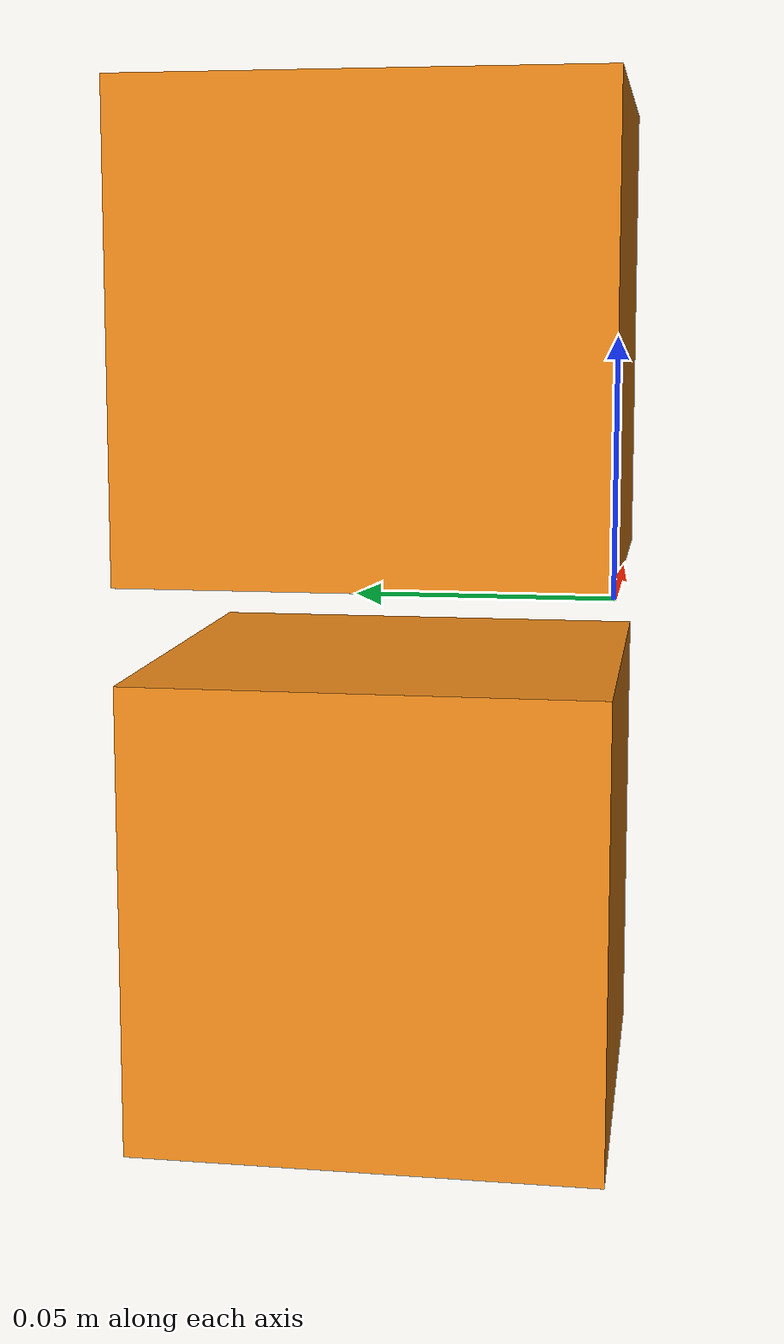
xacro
<robot name="planar_folding_assembly" xmlns:xacro="http://www.ros.org/wiki/xacro">

  <xacro:property name="box_size_x" value="0.1" />
  <xacro:property name="box_size_y" value="0.1" />
  <xacro:property name="box_size_z" value="0.1" />

  <link name="handle" >

    <collision>
      <origin xyz="${box_size_x/2} ${box_size_y/2} ${box_size_z/2}" rpy="0 0 0" />
      <geometry>
        <box size="${box_size_x} ${box_size_y} ${box_size_z}" />
      </geometry>
    </collision>

    <visual>
      <origin xyz="${box_size_x/2} ${box_size_y/2} ${box_size_z/2}" rpy="0 0 0" />
      <geometry>
        <box size="${box_size_x} ${box_size_y} ${box_size_z}" />
      </geometry>
      <material name="orange"/>
    </visual>

    <inertial>
      <origin xyz="${box_size_x/2} ${box_size_y/2} ${box_size_z/2}" rpy="0 0 0"/>
      <mass value="1"/>
      <inertia
        ixx="1.0" ixy="0.0" ixz="0.0"
        iyy="1.0" iyz="0.0"
        izz="1.0"/>
    </inertial>

  </link>

  <joint name="handle_joint" type="revolute">

    <physics>
      <provide_feedback>1</provide_feedback>
    </physics>

    <origin xyz="0 0 ${-box_size_z*1.2}" rpy="0 0 0" />
    <parent link="handle" />
    <child link="box" />
    <limit lower="0" upper="0" velocity="1" effort="1" />

  </joint>

  <link name="box">

    <collision>
      <origin xyz="${box_size_x/2} ${box_size_y/2} ${box_size_z/2}" rpy="0 0 0" />
      <geometry>
        <box size="${box_size_x} ${box_size_y} ${box_size_z}" />
      </geometry>
    </collision>

    <visual>
      <origin xyz="${box_size_x/2} ${box_size_y/2} ${box_size_z/2}" rpy="0 0 0" />
      <geometry>
        <box size="${box_size_x} ${box_size_y} ${box_size_z}" />
      </geometry>
      <material name="orange"/>
    </visual>

    <inertial>
      <origin xyz="${box_size_x/2} ${box_size_y/2} ${box_size_z/2}" rpy="0 0 0"/>
      <mass value="1"/>
      <inertia
        ixx="1.0" ixy="0.0" ixz="0.0"
        iyy="1.0" iyz="0.0"
        izz="1.0"/>
    </inertial>

  </link>

  <gazebo>
    <plugin name="planar_folding_controller" filename="libgazebo_ros_planar_folding_assembly_controller.so">
    </plugin>
  </gazebo>

</robot>
